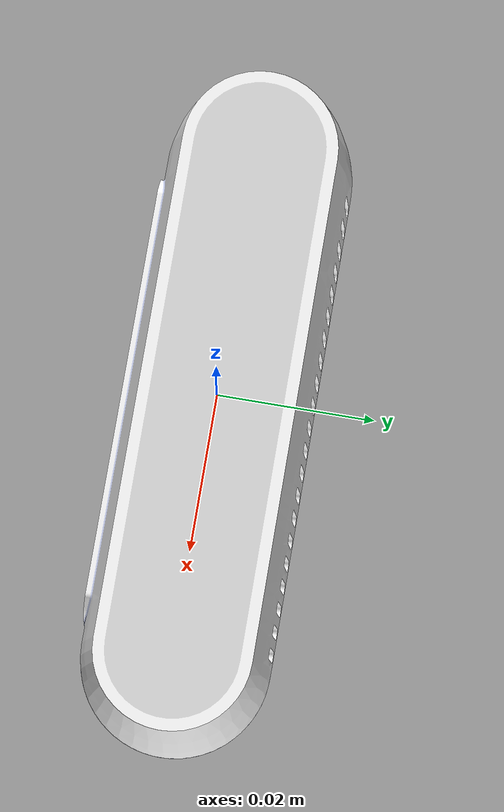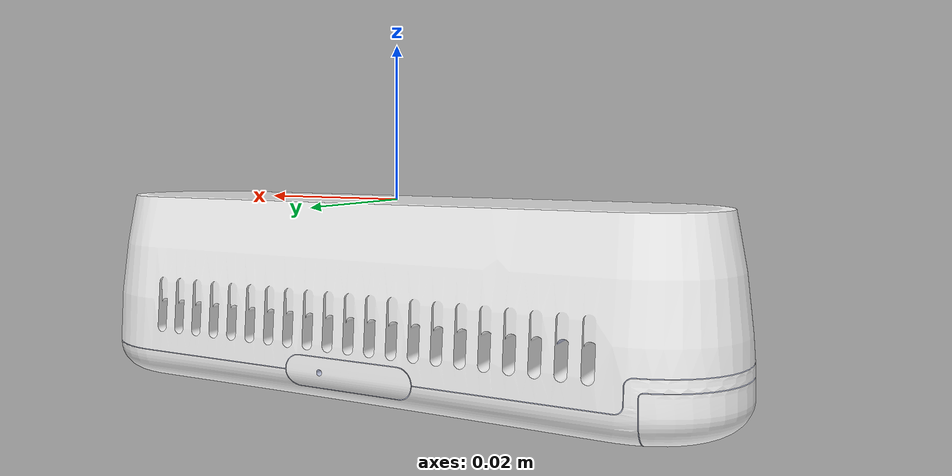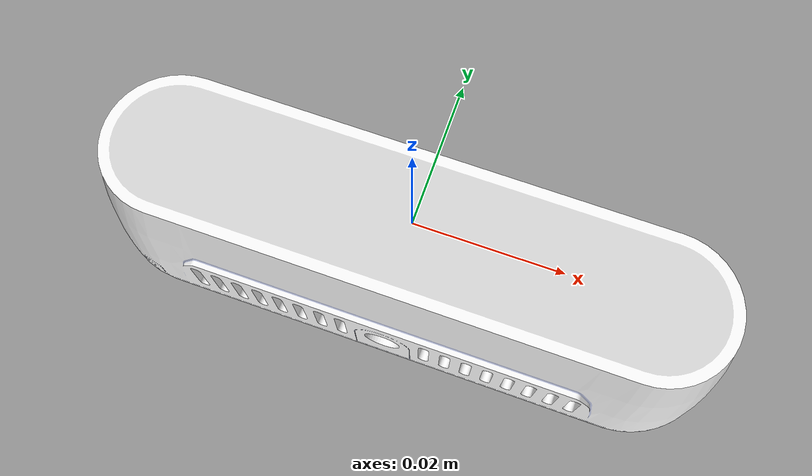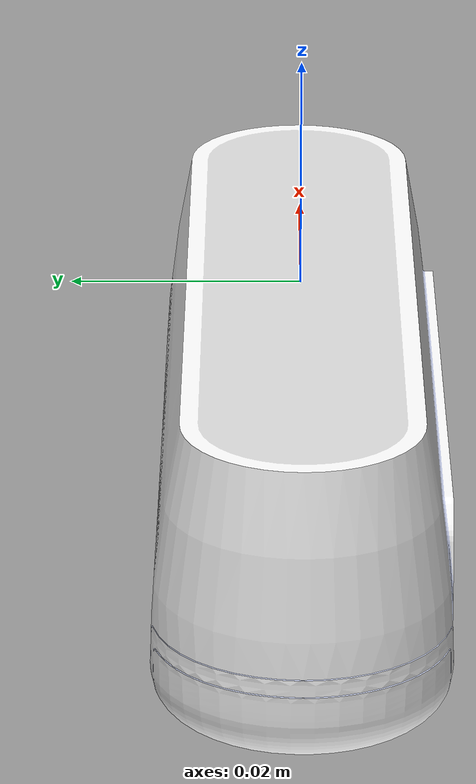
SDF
<?xml version="1.0" encoding="UTF-8"?>
<sdf version='1.9'>
  <model name='OakD-Lite'>
    <pose>0 0 0 0 0 0</pose>
    <self_collide>false</self_collide>
    <static>false</static>
    <link name="OakD-Lite/base_link">
      <inertial>
        <pose>0.00358 -0.03 .014 0 0 0</pose>
        <mass>0.00000000061</mass>
        <inertia>
          <ixx>0.0000460804</ixx>
          <ixy>0</ixy>
          <ixz>0</ixz>
          <iyy>0.0000055421</iyy>
          <iyz>0</iyz>
          <izz>0.0000436519</izz>
        </inertia>
      </inertial>
      <visual name="OakD-Lite/visual">
        <pose>0 0 0 0 0 0</pose>
        <geometry>
          <mesh>
            <scale>1 1 1</scale>
            <uri>model://OakD-Lite/meshes/camera.dae</uri>
          </mesh>
        </geometry>
      </visual>
      <collision name="OakD-Lite/collision">
        <pose>0.00358 -0.03 .014 0 0 0</pose>
        <geometry>
          <box>
            <size>0.0175 0.091 0.028</size>
          </box>
        </geometry>
      </collision>
      <sensor name="IMX214" type="camera">
        <pose>0.01233 -0.03 .01878 1.57 -1.57 0</pose>
        <camera>
          <horizontal_fov>1.5708</horizontal_fov>
          <image>
            <width>1920</width>
            <height>1080</height>
          </image>
          <clip>
            <near>0.1</near>
            <far>100</far>
          </clip>
        </camera>
        <always_on>1</always_on>
        <update_rate>30</update_rate>
        <visualize>true</visualize>
        <topic>camera</topic>
      </sensor>
      <sensor name="StereoOV7251" type="depth_camera">
        <pose>0.01233 -0.03 .01878 1.57 -1.57 0</pose>
        <camera>
          <horizontal_fov>1.274</horizontal_fov>
          <image>
            <width>640</width>
            <height>480</height>
            <format>R_FLOAT32</format>
          </image>
          <clip>
            <near>0.2</near>
            <far>19.1</far>
          </clip>
        </camera>
        <always_on>1</always_on>
        <update_rate>30</update_rate>
        <visualize>true</visualize>
        <topic>depth_camera</topic>
      </sensor>
      <sensor name="rgbd_camera" type="rgbd_camera">
        <pose>0.01233 -0.03 .01878 1.57 -1.57 0</pose>
        <camera>
          <horizontal_fov>1.047</horizontal_fov>
          <image>
            <width>1920</width>
            <height>1080</height>
          </image>
          <clip>
            <near>0.1</near>
            <far>100</far>
          </clip>
        </camera>
        <always_on>1</always_on>
        <update_rate>30</update_rate>
        <visualize>true</visualize>
        <topic>rgbd_camera</topic>
        <enable_metrics>true</enable_metrics>
      </sensor>
      <gravity>true</gravity>
      <velocity_decay/>
    </link>
  </model>
</sdf>
